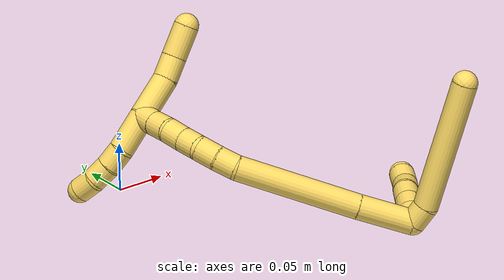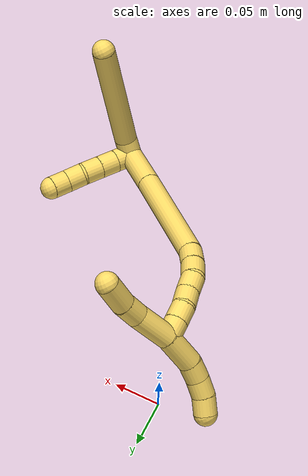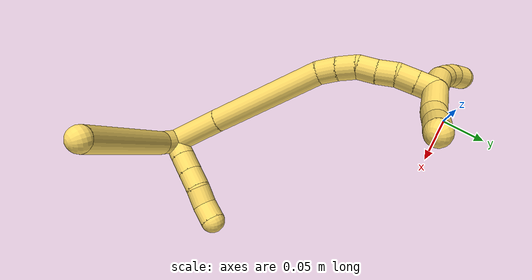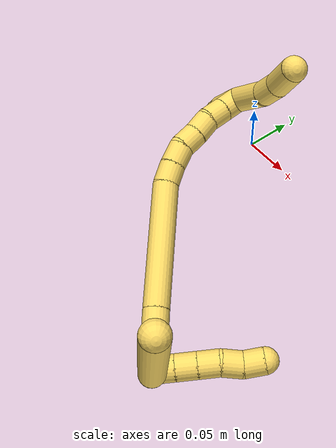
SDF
<sdf version="1.7">
 <world name="default">
  <model name="5">
   <static>0</static>
   <link name="5">
    <collision name="collision-cylinder-e_1_2_8">
     <pose>-0.002636 -0.000316 0.009964 0.031693 -0.258468 -0.004119</pose>
     <geometry><cylinder><radius>0.0125</radius><length>0.020624</length></cylinder></geometry>
     <surface>
      <friction><ode><mu>1.16</mu><mu2>1.16</mu2><slip1>0</slip1><slip2>0</slip2></ode></friction>
      <contact><ode><kp>1e+06</kp><kd>1</kd><max_vel>0</max_vel><min_depth>0.001</min_depth></ode></contact>
     </surface>
    </collision>
    <visual name="visual-cylinder-e_1_2_8">
     <pose>-0.002636 -0.000316 0.009964 0.031693 -0.258468 -0.004119</pose>
     <geometry><cylinder><radius>0.0125</radius><length>0.020624</length></cylinder></geometry>
     <material><ambient>1 0.858824 0.4 1</ambient></material>
    </visual>
    <collision name="collision-cylinder-e_2_8_6">
     <pose>-0.040041 0.006896 0.073956 -0.13844 -0.567466 0.040428</pose>
     <geometry><cylinder><radius>0.0125</radius><length>0.129376</length></cylinder></geometry>
     <surface>
      <friction><ode><mu>1.16</mu><mu2>1.16</mu2><slip1>0</slip1><slip2>0</slip2></ode></friction>
      <contact><ode><kp>1e+06</kp><kd>1</kd><max_vel>0</max_vel><min_depth>0.001</min_depth></ode></contact>
     </surface>
    </collision>
    <visual name="visual-cylinder-e_2_8_6">
     <pose>-0.040041 0.006896 0.073956 -0.13844 -0.567466 0.040428</pose>
     <geometry><cylinder><radius>0.0125</radius><length>0.129376</length></cylinder></geometry>
     <material><ambient>1 0.858824 0.4 1</ambient></material>
    </visual>
    <collision name="collision-cylinder-e_1_2_9">
     <pose>0.00174 0.00975 0.00138 -1.43018 0.174929 -0.152007</pose>
     <geometry><cylinder><radius>0.0125</radius><length>0.02</length></cylinder></geometry>
     <surface>
      <friction><ode><mu>1.16</mu><mu2>1.16</mu2><slip1>0</slip1><slip2>0</slip2></ode></friction>
      <contact><ode><kp>1e+06</kp><kd>1</kd><max_vel>0</max_vel><min_depth>0.001</min_depth></ode></contact>
     </surface>
    </collision>
    <visual name="visual-cylinder-e_1_2_9">
     <pose>0.00174 0.00975 0.00138 -1.43018 0.174929 -0.152007</pose>
     <geometry><cylinder><radius>0.0125</radius><length>0.02</length></cylinder></geometry>
     <material><ambient>1 0.858824 0.4 1</ambient></material>
    </visual>
    <collision name="collision-cylinder-e_2_9_10">
     <pose>0.005169 0.02926 0.004142 -1.43016 0.169651 -0.147411</pose>
     <geometry><cylinder><radius>0.0125</radius><length>0.02</length></cylinder></geometry>
     <surface>
      <friction><ode><mu>1.16</mu><mu2>1.16</mu2><slip1>0</slip1><slip2>0</slip2></ode></friction>
      <contact><ode><kp>1e+06</kp><kd>1</kd><max_vel>0</max_vel><min_depth>0.001</min_depth></ode></contact>
     </surface>
    </collision>
    <visual name="visual-cylinder-e_2_9_10">
     <pose>0.005169 0.02926 0.004142 -1.43016 0.169651 -0.147411</pose>
     <geometry><cylinder><radius>0.0125</radius><length>0.02</length></cylinder></geometry>
     <material><ambient>1 0.858824 0.4 1</ambient></material>
    </visual>
    <collision name="collision-cylinder-e_3_10_11">
     <pose>0.00852 0.048784 0.00689 -1.43173 0.167031 -0.145363</pose>
     <geometry><cylinder><radius>0.0125</radius><length>0.02</length></cylinder></geometry>
     <surface>
      <friction><ode><mu>1.16</mu><mu2>1.16</mu2><slip1>0</slip1><slip2>0</slip2></ode></friction>
      <contact><ode><kp>1e+06</kp><kd>1</kd><max_vel>0</max_vel><min_depth>0.001</min_depth></ode></contact>
     </surface>
    </collision>
    <visual name="visual-cylinder-e_3_10_11">
     <pose>0.00852 0.048784 0.00689 -1.43173 0.167031 -0.145363</pose>
     <geometry><cylinder><radius>0.0125</radius><length>0.02</length></cylinder></geometry>
     <material><ambient>1 0.858824 0.4 1</ambient></material>
    </visual>
    <collision name="collision-cylinder-e_4_11_12">
     <pose>0.014211 0.067683 0.008864 -1.50451 0.414596 -0.388672</pose>
     <geometry><cylinder><radius>0.0125</radius><length>0.02</length></cylinder></geometry>
     <surface>
      <friction><ode><mu>1.16</mu><mu2>1.16</mu2><slip1>0</slip1><slip2>0</slip2></ode></friction>
      <contact><ode><kp>1e+06</kp><kd>1</kd><max_vel>0</max_vel><min_depth>0.001</min_depth></ode></contact>
     </surface>
    </collision>
    <visual name="visual-cylinder-e_4_11_12">
     <pose>0.014211 0.067683 0.008864 -1.50451 0.414596 -0.388672</pose>
     <geometry><cylinder><radius>0.0125</radius><length>0.02</length></cylinder></geometry>
     <material><ambient>1 0.858824 0.4 1</ambient></material>
    </visual>
    <collision name="collision-cylinder-e_5_12_5">
     <pose>0.019174 0.086682 0.010804 -1.43636 0.093594 -0.081802</pose>
     <geometry><cylinder><radius>0.0125</radius><length>0.02</length></cylinder></geometry>
     <surface>
      <friction><ode><mu>1.16</mu><mu2>1.16</mu2><slip1>0</slip1><slip2>0</slip2></ode></friction>
      <contact><ode><kp>1e+06</kp><kd>1</kd><max_vel>0</max_vel><min_depth>0.001</min_depth></ode></contact>
     </surface>
    </collision>
    <visual name="visual-cylinder-e_5_12_5">
     <pose>0.019174 0.086682 0.010804 -1.43636 0.093594 -0.081802</pose>
     <geometry><cylinder><radius>0.0125</radius><length>0.02</length></cylinder></geometry>
     <material><ambient>1 0.858824 0.4 1</ambient></material>
    </visual>
    <collision name="collision-cylinder-e_1_2_13">
     <pose>-0.021402 0.009415 -0.014429 -2.56347 -0.89299 2.02988</pose>
     <geometry><cylinder><radius>0.0125</radius><length>0.05495</length></cylinder></geometry>
     <surface>
      <friction><ode><mu>1.16</mu><mu2>1.16</mu2><slip1>0</slip1><slip2>0</slip2></ode></friction>
      <contact><ode><kp>1e+06</kp><kd>1</kd><max_vel>0</max_vel><min_depth>0.001</min_depth></ode></contact>
     </surface>
    </collision>
    <visual name="visual-cylinder-e_1_2_13">
     <pose>-0.021402 0.009415 -0.014429 -2.56347 -0.89299 2.02988</pose>
     <geometry><cylinder><radius>0.0125</radius><length>0.05495</length></cylinder></geometry>
     <material><ambient>1 0.858824 0.4 1</ambient></material>
    </visual>
    <collision name="collision-cylinder-e_2_13_14">
     <pose>-0.091045 0.041249 -0.05968 -2.51272 -0.902157 1.95901</pose>
     <geometry><cylinder><radius>0.0125</radius><length>0.122962</length></cylinder></geometry>
     <surface>
      <friction><ode><mu>1.16</mu><mu2>1.16</mu2><slip1>0</slip1><slip2>0</slip2></ode></friction>
      <contact><ode><kp>1e+06</kp><kd>1</kd><max_vel>0</max_vel><min_depth>0.001</min_depth></ode></contact>
     </surface>
    </collision>
    <visual name="visual-cylinder-e_2_13_14">
     <pose>-0.091045 0.041249 -0.05968 -2.51272 -0.902157 1.95901</pose>
     <geometry><cylinder><radius>0.0125</radius><length>0.122962</length></cylinder></geometry>
     <material><ambient>1 0.858824 0.4 1</ambient></material>
    </visual>
    <collision name="collision-cylinder-e_3_14_15">
     <pose>-0.146635 0.069821 -0.094633 -2.1622 -0.781162 1.31548</pose>
     <geometry><cylinder><radius>0.0125</radius><length>0.020871</length></cylinder></geometry>
     <surface>
      <friction><ode><mu>1.16</mu><mu2>1.16</mu2><slip1>0</slip1><slip2>0</slip2></ode></friction>
      <contact><ode><kp>1e+06</kp><kd>1</kd><max_vel>0</max_vel><min_depth>0.001</min_depth></ode></contact>
     </surface>
    </collision>
    <visual name="visual-cylinder-e_3_14_15">
     <pose>-0.146635 0.069821 -0.094633 -2.1622 -0.781162 1.31548</pose>
     <geometry><cylinder><radius>0.0125</radius><length>0.020871</length></cylinder></geometry>
     <material><ambient>1 0.858824 0.4 1</ambient></material>
    </visual>
    <collision name="collision-cylinder-e_4_15_16">
     <pose>-0.160699 0.083091 -0.102633 -2.06852 -0.692155 1.09009</pose>
     <geometry><cylinder><radius>0.0125</radius><length>0.021047</length></cylinder></geometry>
     <surface>
      <friction><ode><mu>1.16</mu><mu2>1.16</mu2><slip1>0</slip1><slip2>0</slip2></ode></friction>
      <contact><ode><kp>1e+06</kp><kd>1</kd><max_vel>0</max_vel><min_depth>0.001</min_depth></ode></contact>
     </surface>
    </collision>
    <visual name="visual-cylinder-e_4_15_16">
     <pose>-0.160699 0.083091 -0.102633 -2.06852 -0.692155 1.09009</pose>
     <geometry><cylinder><radius>0.0125</radius><length>0.021047</length></cylinder></geometry>
     <material><ambient>1 0.858824 0.4 1</ambient></material>
    </visual>
    <collision name="collision-cylinder-e_5_16_17">
     <pose>-0.170915 0.09885 -0.110182 -1.97362 -0.356765 0.532669</pose>
     <geometry><cylinder><radius>0.0125</radius><length>0.020046</length></cylinder></geometry>
     <surface>
      <friction><ode><mu>1.16</mu><mu2>1.16</mu2><slip1>0</slip1><slip2>0</slip2></ode></friction>
      <contact><ode><kp>1e+06</kp><kd>1</kd><max_vel>0</max_vel><min_depth>0.001</min_depth></ode></contact>
     </surface>
    </collision>
    <visual name="visual-cylinder-e_5_16_17">
     <pose>-0.170915 0.09885 -0.110182 -1.97362 -0.356765 0.532669</pose>
     <geometry><cylinder><radius>0.0125</radius><length>0.020046</length></cylinder></geometry>
     <material><ambient>1 0.858824 0.4 1</ambient></material>
    </visual>
    <collision name="collision-cylinder-e_6_17_18">
     <pose>-0.179051 0.115686 -0.117291 -1.96679 -0.480897 0.70571</pose>
     <geometry><cylinder><radius>0.0125</radius><length>0.02004</length></cylinder></geometry>
     <surface>
      <friction><ode><mu>1.16</mu><mu2>1.16</mu2><slip1>0</slip1><slip2>0</slip2></ode></friction>
      <contact><ode><kp>1e+06</kp><kd>1</kd><max_vel>0</max_vel><min_depth>0.001</min_depth></ode></contact>
     </surface>
    </collision>
    <visual name="visual-cylinder-e_6_17_18">
     <pose>-0.179051 0.115686 -0.117291 -1.96679 -0.480897 0.70571</pose>
     <geometry><cylinder><radius>0.0125</radius><length>0.02004</length></cylinder></geometry>
     <material><ambient>1 0.858824 0.4 1</ambient></material>
    </visual>
    <collision name="collision-cylinder-e_7_18_19">
     <pose>-0.185872 0.132933 -0.124471 -1.96397 -0.219487 0.327035</pose>
     <geometry><cylinder><radius>0.0125</radius><length>0.020078</length></cylinder></geometry>
     <surface>
      <friction><ode><mu>1.16</mu><mu2>1.16</mu2><slip1>0</slip1><slip2>0</slip2></ode></friction>
      <contact><ode><kp>1e+06</kp><kd>1</kd><max_vel>0</max_vel><min_depth>0.001</min_depth></ode></contact>
     </surface>
    </collision>
    <visual name="visual-cylinder-e_7_18_19">
     <pose>-0.185872 0.132933 -0.124471 -1.96397 -0.219487 0.327035</pose>
     <geometry><cylinder><radius>0.0125</radius><length>0.020078</length></cylinder></geometry>
     <material><ambient>1 0.858824 0.4 1</ambient></material>
    </visual>
    <collision name="collision-cylinder-e_8_19_1">
     <pose>-0.190394 0.151103 -0.131607 -1.92594 -0.235812 0.337307</pose>
     <geometry><cylinder><radius>0.0125</radius><length>0.020006</length></cylinder></geometry>
     <surface>
      <friction><ode><mu>1.16</mu><mu2>1.16</mu2><slip1>0</slip1><slip2>0</slip2></ode></friction>
      <contact><ode><kp>1e+06</kp><kd>1</kd><max_vel>0</max_vel><min_depth>0.001</min_depth></ode></contact>
     </surface>
    </collision>
    <visual name="visual-cylinder-e_8_19_1">
     <pose>-0.190394 0.151103 -0.131607 -1.92594 -0.235812 0.337307</pose>
     <geometry><cylinder><radius>0.0125</radius><length>0.020006</length></cylinder></geometry>
     <material><ambient>1 0.858824 0.4 1</ambient></material>
    </visual>
    <collision name="collision-cylinder-e_1_1_20">
     <pose>-0.189917 0.154066 -0.153386 2.81868 0.144092 0.834218</pose>
     <geometry><cylinder><radius>0.0125</radius><length>0.039205</length></cylinder></geometry>
     <surface>
      <friction><ode><mu>1.16</mu><mu2>1.16</mu2><slip1>0</slip1><slip2>0</slip2></ode></friction>
      <contact><ode><kp>1e+06</kp><kd>1</kd><max_vel>0</max_vel><min_depth>0.001</min_depth></ode></contact>
     </surface>
    </collision>
    <visual name="visual-cylinder-e_1_1_20">
     <pose>-0.189917 0.154066 -0.153386 2.81868 0.144092 0.834218</pose>
     <geometry><cylinder><radius>0.0125</radius><length>0.039205</length></cylinder></geometry>
     <material><ambient>1 0.858824 0.4 1</ambient></material>
    </visual>
    <collision name="collision-cylinder-e_2_20_21">
     <pose>-0.185336 0.147255 -0.181911 3.07705 0.172221 2.4259</pose>
     <geometry><cylinder><radius>0.0125</radius><length>0.020602</length></cylinder></geometry>
     <surface>
      <friction><ode><mu>1.16</mu><mu2>1.16</mu2><slip1>0</slip1><slip2>0</slip2></ode></friction>
      <contact><ode><kp>1e+06</kp><kd>1</kd><max_vel>0</max_vel><min_depth>0.001</min_depth></ode></contact>
     </surface>
    </collision>
    <visual name="visual-cylinder-e_2_20_21">
     <pose>-0.185336 0.147255 -0.181911 3.07705 0.172221 2.4259</pose>
     <geometry><cylinder><radius>0.0125</radius><length>0.020602</length></cylinder></geometry>
     <material><ambient>1 0.858824 0.4 1</ambient></material>
    </visual>
    <collision name="collision-cylinder-e_3_21_22">
     <pose>-0.182469 0.1473 -0.202042 -3.07178 0.109449 -2.00658</pose>
     <geometry><cylinder><radius>0.0125</radius><length>0.020177</length></cylinder></geometry>
     <surface>
      <friction><ode><mu>1.16</mu><mu2>1.16</mu2><slip1>0</slip1><slip2>0</slip2></ode></friction>
      <contact><ode><kp>1e+06</kp><kd>1</kd><max_vel>0</max_vel><min_depth>0.001</min_depth></ode></contact>
     </surface>
    </collision>
    <visual name="visual-cylinder-e_3_21_22">
     <pose>-0.182469 0.1473 -0.202042 -3.07178 0.109449 -2.00658</pose>
     <geometry><cylinder><radius>0.0125</radius><length>0.020177</length></cylinder></geometry>
     <material><ambient>1 0.858824 0.4 1</ambient></material>
    </visual>
    <collision name="collision-cylinder-e_4_22_4">
     <pose>-0.180159 0.151202 -0.22145 -2.81342 0.121003 -0.701438</pose>
     <geometry><cylinder><radius>0.0125</radius><length>0.020015</length></cylinder></geometry>
     <surface>
      <friction><ode><mu>1.16</mu><mu2>1.16</mu2><slip1>0</slip1><slip2>0</slip2></ode></friction>
      <contact><ode><kp>1e+06</kp><kd>1</kd><max_vel>0</max_vel><min_depth>0.001</min_depth></ode></contact>
     </surface>
    </collision>
    <visual name="visual-cylinder-e_4_22_4">
     <pose>-0.180159 0.151202 -0.22145 -2.81342 0.121003 -0.701438</pose>
     <geometry><cylinder><radius>0.0125</radius><length>0.020015</length></cylinder></geometry>
     <material><ambient>1 0.858824 0.4 1</ambient></material>
    </visual>
    <collision name="collision-cylinder-e_1_1_23">
     <pose>-0.193397 0.170251 -0.116086 -0.48779 -0.031092 0.007738</pose>
     <geometry><cylinder><radius>0.0125</radius><length>0.04282</length></cylinder></geometry>
     <surface>
      <friction><ode><mu>1.16</mu><mu2>1.16</mu2><slip1>0</slip1><slip2>0</slip2></ode></friction>
      <contact><ode><kp>1e+06</kp><kd>1</kd><max_vel>0</max_vel><min_depth>0.001</min_depth></ode></contact>
     </surface>
    </collision>
    <visual name="visual-cylinder-e_1_1_23">
     <pose>-0.193397 0.170251 -0.116086 -0.48779 -0.031092 0.007738</pose>
     <geometry><cylinder><radius>0.0125</radius><length>0.04282</length></cylinder></geometry>
     <material><ambient>1 0.858824 0.4 1</ambient></material>
    </visual>
    <collision name="collision-cylinder-e_2_23_24">
     <pose>-0.197004 0.185815 -0.086952 -0.4959 -0.247653 0.062997</pose>
     <geometry><cylinder><radius>0.0125</radius><length>0.023995</length></cylinder></geometry>
     <surface>
      <friction><ode><mu>1.16</mu><mu2>1.16</mu2><slip1>0</slip1><slip2>0</slip2></ode></friction>
      <contact><ode><kp>1e+06</kp><kd>1</kd><max_vel>0</max_vel><min_depth>0.001</min_depth></ode></contact>
     </surface>
    </collision>
    <visual name="visual-cylinder-e_2_23_24">
     <pose>-0.197004 0.185815 -0.086952 -0.4959 -0.247653 0.062997</pose>
     <geometry><cylinder><radius>0.0125</radius><length>0.023995</length></cylinder></geometry>
     <material><ambient>1 0.858824 0.4 1</ambient></material>
    </visual>
    <collision name="collision-cylinder-e_3_24_3">
     <pose>-0.205431 0.196772 -0.062031 -0.353614 -0.336982 0.060767</pose>
     <geometry><cylinder><radius>0.0125</radius><length>0.033185</length></cylinder></geometry>
     <surface>
      <friction><ode><mu>1.16</mu><mu2>1.16</mu2><slip1>0</slip1><slip2>0</slip2></ode></friction>
      <contact><ode><kp>1e+06</kp><kd>1</kd><max_vel>0</max_vel><min_depth>0.001</min_depth></ode></contact>
     </surface>
    </collision>
    <visual name="visual-cylinder-e_3_24_3">
     <pose>-0.205431 0.196772 -0.062031 -0.353614 -0.336982 0.060767</pose>
     <geometry><cylinder><radius>0.0125</radius><length>0.033185</length></cylinder></geometry>
     <material><ambient>1 0.858824 0.4 1</ambient></material>
    </visual>
    <collision name="collision-sphere-3">
     <pose>-0.210917 0.202195 -0.04734 0 -0 0</pose>
     <geometry><sphere><radius>0.0125</radius></sphere></geometry>
     <surface>
      <friction><ode><mu>1.16</mu><mu2>1.16</mu2><slip1>0</slip1><slip2>0</slip2></ode></friction>
      <contact><ode><kp>1e+06</kp><kd>1</kd><max_vel>0</max_vel><min_depth>0.001</min_depth></ode></contact>
     </surface>
    </collision>
    <visual name="visual-sphere-3">
     <pose>-0.210917 0.202195 -0.04734 0 -0 0</pose>
     <geometry><sphere><radius>0.0125</radius></sphere></geometry>
     <material><ambient>1 0.858824 0.4 1</ambient></material>
    </visual>
    <collision name="collision-sphere-24">
     <pose>-0.199944 0.19135 -0.076721 0 -0 0</pose>
     <geometry><sphere><radius>0.0125</radius></sphere></geometry>
     <surface>
      <friction><ode><mu>1.16</mu><mu2>1.16</mu2><slip1>0</slip1><slip2>0</slip2></ode></friction>
      <contact><ode><kp>1e+06</kp><kd>1</kd><max_vel>0</max_vel><min_depth>0.001</min_depth></ode></contact>
     </surface>
    </collision>
    <visual name="visual-sphere-24">
     <pose>-0.199944 0.19135 -0.076721 0 -0 0</pose>
     <geometry><sphere><radius>0.0125</radius></sphere></geometry>
     <material><ambient>1 0.858824 0.4 1</ambient></material>
    </visual>
    <collision name="collision-sphere-23">
     <pose>-0.194063 0.180281 -0.097182 0 -0 0</pose>
     <geometry><sphere><radius>0.0125</radius></sphere></geometry>
     <surface>
      <friction><ode><mu>1.16</mu><mu2>1.16</mu2><slip1>0</slip1><slip2>0</slip2></ode></friction>
      <contact><ode><kp>1e+06</kp><kd>1</kd><max_vel>0</max_vel><min_depth>0.001</min_depth></ode></contact>
     </surface>
    </collision>
    <visual name="visual-sphere-23">
     <pose>-0.194063 0.180281 -0.097182 0 -0 0</pose>
     <geometry><sphere><radius>0.0125</radius></sphere></geometry>
     <material><ambient>1 0.858824 0.4 1</ambient></material>
    </visual>
    <collision name="collision-sphere-4">
     <pose>-0.178951 0.154404 -0.230854 0 -0 0</pose>
     <geometry><sphere><radius>0.0125</radius></sphere></geometry>
     <surface>
      <friction><ode><mu>1.16</mu><mu2>1.16</mu2><slip1>0</slip1><slip2>0</slip2></ode></friction>
      <contact><ode><kp>1e+06</kp><kd>1</kd><max_vel>0</max_vel><min_depth>0.001</min_depth></ode></contact>
     </surface>
    </collision>
    <visual name="visual-sphere-4">
     <pose>-0.178951 0.154404 -0.230854 0 -0 0</pose>
     <geometry><sphere><radius>0.0125</radius></sphere></geometry>
     <material><ambient>1 0.858824 0.4 1</ambient></material>
    </visual>
    <collision name="collision-sphere-22">
     <pose>-0.181367 0.148 -0.212046 0 -0 0</pose>
     <geometry><sphere><radius>0.0125</radius></sphere></geometry>
     <surface>
      <friction><ode><mu>1.16</mu><mu2>1.16</mu2><slip1>0</slip1><slip2>0</slip2></ode></friction>
      <contact><ode><kp>1e+06</kp><kd>1</kd><max_vel>0</max_vel><min_depth>0.001</min_depth></ode></contact>
     </surface>
    </collision>
    <visual name="visual-sphere-22">
     <pose>-0.181367 0.148 -0.212046 0 -0 0</pose>
     <geometry><sphere><radius>0.0125</radius></sphere></geometry>
     <material><ambient>1 0.858824 0.4 1</ambient></material>
    </visual>
    <collision name="collision-sphere-21">
     <pose>-0.183571 0.146601 -0.192039 0 -0 0</pose>
     <geometry><sphere><radius>0.0125</radius></sphere></geometry>
     <surface>
      <friction><ode><mu>1.16</mu><mu2>1.16</mu2><slip1>0</slip1><slip2>0</slip2></ode></friction>
      <contact><ode><kp>1e+06</kp><kd>1</kd><max_vel>0</max_vel><min_depth>0.001</min_depth></ode></contact>
     </surface>
    </collision>
    <visual name="visual-sphere-21">
     <pose>-0.183571 0.146601 -0.192039 0 -0 0</pose>
     <geometry><sphere><radius>0.0125</radius></sphere></geometry>
     <material><ambient>1 0.858824 0.4 1</ambient></material>
    </visual>
    <collision name="collision-sphere-20">
     <pose>-0.187102 0.14791 -0.171783 0 -0 0</pose>
     <geometry><sphere><radius>0.0125</radius></sphere></geometry>
     <surface>
      <friction><ode><mu>1.16</mu><mu2>1.16</mu2><slip1>0</slip1><slip2>0</slip2></ode></friction>
      <contact><ode><kp>1e+06</kp><kd>1</kd><max_vel>0</max_vel><min_depth>0.001</min_depth></ode></contact>
     </surface>
    </collision>
    <visual name="visual-sphere-20">
     <pose>-0.187102 0.14791 -0.171783 0 -0 0</pose>
     <geometry><sphere><radius>0.0125</radius></sphere></geometry>
     <material><ambient>1 0.858824 0.4 1</ambient></material>
    </visual>
    <collision name="collision-sphere-11">
     <pose>0.010183 0.05855 0.008257 0 -0 0</pose>
     <geometry><sphere><radius>0.0125</radius></sphere></geometry>
     <surface>
      <friction><ode><mu>1.16</mu><mu2>1.16</mu2><slip1>0</slip1><slip2>0</slip2></ode></friction>
      <contact><ode><kp>1e+06</kp><kd>1</kd><max_vel>0</max_vel><min_depth>0.001</min_depth></ode></contact>
     </surface>
    </collision>
    <visual name="visual-sphere-11">
     <pose>0.010183 0.05855 0.008257 0 -0 0</pose>
     <geometry><sphere><radius>0.0125</radius></sphere></geometry>
     <material><ambient>1 0.858824 0.4 1</ambient></material>
    </visual>
    <collision name="collision-sphere-10">
     <pose>0.006858 0.039019 0.005524 0 -0 0</pose>
     <geometry><sphere><radius>0.0125</radius></sphere></geometry>
     <surface>
      <friction><ode><mu>1.16</mu><mu2>1.16</mu2><slip1>0</slip1><slip2>0</slip2></ode></friction>
      <contact><ode><kp>1e+06</kp><kd>1</kd><max_vel>0</max_vel><min_depth>0.001</min_depth></ode></contact>
     </surface>
    </collision>
    <visual name="visual-sphere-10">
     <pose>0.006858 0.039019 0.005524 0 -0 0</pose>
     <geometry><sphere><radius>0.0125</radius></sphere></geometry>
     <material><ambient>1 0.858824 0.4 1</ambient></material>
    </visual>
    <collision name="collision-sphere-6">
     <pose>-0.074811 0.014424 0.127983 0 -0 0</pose>
     <geometry><sphere><radius>0.0125</radius></sphere></geometry>
     <surface>
      <friction><ode><mu>1.16</mu><mu2>1.16</mu2><slip1>0</slip1><slip2>0</slip2></ode></friction>
      <contact><ode><kp>1e+06</kp><kd>1</kd><max_vel>0</max_vel><min_depth>0.001</min_depth></ode></contact>
     </surface>
    </collision>
    <visual name="visual-sphere-6">
     <pose>-0.074811 0.014424 0.127983 0 -0 0</pose>
     <geometry><sphere><radius>0.0125</radius></sphere></geometry>
     <material><ambient>1 0.858824 0.4 1</ambient></material>
    </visual>
    <collision name="collision-sphere-9">
     <pose>0.003481 0.0195 0.00276 0 -0 0</pose>
     <geometry><sphere><radius>0.0125</radius></sphere></geometry>
     <surface>
      <friction><ode><mu>1.16</mu><mu2>1.16</mu2><slip1>0</slip1><slip2>0</slip2></ode></friction>
      <contact><ode><kp>1e+06</kp><kd>1</kd><max_vel>0</max_vel><min_depth>0.001</min_depth></ode></contact>
     </surface>
    </collision>
    <visual name="visual-sphere-9">
     <pose>0.003481 0.0195 0.00276 0 -0 0</pose>
     <geometry><sphere><radius>0.0125</radius></sphere></geometry>
     <material><ambient>1 0.858824 0.4 1</ambient></material>
    </visual>
    <collision name="collision-sphere-2">
     <geometry><sphere><radius>0.0125</radius></sphere></geometry>
     <surface>
      <friction><ode><mu>1.16</mu><mu2>1.16</mu2><slip1>0</slip1><slip2>0</slip2></ode></friction>
      <contact><ode><kp>1e+06</kp><kd>1</kd><max_vel>0</max_vel><min_depth>0.001</min_depth></ode></contact>
     </surface>
    </collision>
    <visual name="visual-sphere-2">
     <geometry><sphere><radius>0.0125</radius></sphere></geometry>
     <material><ambient>1 0.858824 0.4 1</ambient></material>
    </visual>
    <collision name="collision-sphere-19">
     <pose>-0.188057 0.141984 -0.128225 0 -0 0</pose>
     <geometry><sphere><radius>0.0125</radius></sphere></geometry>
     <surface>
      <friction><ode><mu>1.16</mu><mu2>1.16</mu2><slip1>0</slip1><slip2>0</slip2></ode></friction>
      <contact><ode><kp>1e+06</kp><kd>1</kd><max_vel>0</max_vel><min_depth>0.001</min_depth></ode></contact>
     </surface>
    </collision>
    <visual name="visual-sphere-19">
     <pose>-0.188057 0.141984 -0.128225 0 -0 0</pose>
     <geometry><sphere><radius>0.0125</radius></sphere></geometry>
     <material><ambient>1 0.858824 0.4 1</ambient></material>
    </visual>
    <collision name="collision-sphere-8">
     <pose>-0.005271 -0.000632 0.019929 0 -0 0</pose>
     <geometry><sphere><radius>0.0125</radius></sphere></geometry>
     <surface>
      <friction><ode><mu>1.16</mu><mu2>1.16</mu2><slip1>0</slip1><slip2>0</slip2></ode></friction>
      <contact><ode><kp>1e+06</kp><kd>1</kd><max_vel>0</max_vel><min_depth>0.001</min_depth></ode></contact>
     </surface>
    </collision>
    <visual name="visual-sphere-8">
     <pose>-0.005271 -0.000632 0.019929 0 -0 0</pose>
     <geometry><sphere><radius>0.0125</radius></sphere></geometry>
     <material><ambient>1 0.858824 0.4 1</ambient></material>
    </visual>
    <collision name="collision-sphere-12">
     <pose>0.018239 0.076815 0.00947 0 -0 0</pose>
     <geometry><sphere><radius>0.0125</radius></sphere></geometry>
     <surface>
      <friction><ode><mu>1.16</mu><mu2>1.16</mu2><slip1>0</slip1><slip2>0</slip2></ode></friction>
      <contact><ode><kp>1e+06</kp><kd>1</kd><max_vel>0</max_vel><min_depth>0.001</min_depth></ode></contact>
     </surface>
    </collision>
    <visual name="visual-sphere-12">
     <pose>0.018239 0.076815 0.00947 0 -0 0</pose>
     <geometry><sphere><radius>0.0125</radius></sphere></geometry>
     <material><ambient>1 0.858824 0.4 1</ambient></material>
    </visual>
    <collision name="collision-sphere-5">
     <pose>0.020108 0.096548 0.012139 0 -0 0</pose>
     <geometry><sphere><radius>0.0125</radius></sphere></geometry>
     <surface>
      <friction><ode><mu>1.16</mu><mu2>1.16</mu2><slip1>0</slip1><slip2>0</slip2></ode></friction>
      <contact><ode><kp>1e+06</kp><kd>1</kd><max_vel>0</max_vel><min_depth>0.001</min_depth></ode></contact>
     </surface>
    </collision>
    <visual name="visual-sphere-5">
     <pose>0.020108 0.096548 0.012139 0 -0 0</pose>
     <geometry><sphere><radius>0.0125</radius></sphere></geometry>
     <material><ambient>1 0.858824 0.4 1</ambient></material>
    </visual>
    <collision name="collision-sphere-13">
     <pose>-0.042803 0.01883 -0.028858 0 -0 0</pose>
     <geometry><sphere><radius>0.0125</radius></sphere></geometry>
     <surface>
      <friction><ode><mu>1.16</mu><mu2>1.16</mu2><slip1>0</slip1><slip2>0</slip2></ode></friction>
      <contact><ode><kp>1e+06</kp><kd>1</kd><max_vel>0</max_vel><min_depth>0.001</min_depth></ode></contact>
     </surface>
    </collision>
    <visual name="visual-sphere-13">
     <pose>-0.042803 0.01883 -0.028858 0 -0 0</pose>
     <geometry><sphere><radius>0.0125</radius></sphere></geometry>
     <material><ambient>1 0.858824 0.4 1</ambient></material>
    </visual>
    <collision name="collision-sphere-14">
     <pose>-0.139287 0.063669 -0.090502 0 -0 0</pose>
     <geometry><sphere><radius>0.0125</radius></sphere></geometry>
     <surface>
      <friction><ode><mu>1.16</mu><mu2>1.16</mu2><slip1>0</slip1><slip2>0</slip2></ode></friction>
      <contact><ode><kp>1e+06</kp><kd>1</kd><max_vel>0</max_vel><min_depth>0.001</min_depth></ode></contact>
     </surface>
    </collision>
    <visual name="visual-sphere-14">
     <pose>-0.139287 0.063669 -0.090502 0 -0 0</pose>
     <geometry><sphere><radius>0.0125</radius></sphere></geometry>
     <material><ambient>1 0.858824 0.4 1</ambient></material>
    </visual>
    <collision name="collision-sphere-15">
     <pose>-0.153983 0.075972 -0.098765 0 -0 0</pose>
     <geometry><sphere><radius>0.0125</radius></sphere></geometry>
     <surface>
      <friction><ode><mu>1.16</mu><mu2>1.16</mu2><slip1>0</slip1><slip2>0</slip2></ode></friction>
      <contact><ode><kp>1e+06</kp><kd>1</kd><max_vel>0</max_vel><min_depth>0.001</min_depth></ode></contact>
     </surface>
    </collision>
    <visual name="visual-sphere-15">
     <pose>-0.153983 0.075972 -0.098765 0 -0 0</pose>
     <geometry><sphere><radius>0.0125</radius></sphere></geometry>
     <material><ambient>1 0.858824 0.4 1</ambient></material>
    </visual>
    <collision name="collision-sphere-16">
     <pose>-0.167415 0.09021 -0.106501 0 -0 0</pose>
     <geometry><sphere><radius>0.0125</radius></sphere></geometry>
     <surface>
      <friction><ode><mu>1.16</mu><mu2>1.16</mu2><slip1>0</slip1><slip2>0</slip2></ode></friction>
      <contact><ode><kp>1e+06</kp><kd>1</kd><max_vel>0</max_vel><min_depth>0.001</min_depth></ode></contact>
     </surface>
    </collision>
    <visual name="visual-sphere-16">
     <pose>-0.167415 0.09021 -0.106501 0 -0 0</pose>
     <geometry><sphere><radius>0.0125</radius></sphere></geometry>
     <material><ambient>1 0.858824 0.4 1</ambient></material>
    </visual>
    <collision name="collision-sphere-17">
     <pose>-0.174416 0.10749 -0.113864 0 -0 0</pose>
     <geometry><sphere><radius>0.0125</radius></sphere></geometry>
     <surface>
      <friction><ode><mu>1.16</mu><mu2>1.16</mu2><slip1>0</slip1><slip2>0</slip2></ode></friction>
      <contact><ode><kp>1e+06</kp><kd>1</kd><max_vel>0</max_vel><min_depth>0.001</min_depth></ode></contact>
     </surface>
    </collision>
    <visual name="visual-sphere-17">
     <pose>-0.174416 0.10749 -0.113864 0 -0 0</pose>
     <geometry><sphere><radius>0.0125</radius></sphere></geometry>
     <material><ambient>1 0.858824 0.4 1</ambient></material>
    </visual>
    <collision name="collision-sphere-18">
     <pose>-0.183686 0.123882 -0.120717 0 -0 0</pose>
     <geometry><sphere><radius>0.0125</radius></sphere></geometry>
     <surface>
      <friction><ode><mu>1.16</mu><mu2>1.16</mu2><slip1>0</slip1><slip2>0</slip2></ode></friction>
      <contact><ode><kp>1e+06</kp><kd>1</kd><max_vel>0</max_vel><min_depth>0.001</min_depth></ode></contact>
     </surface>
    </collision>
    <visual name="visual-sphere-18">
     <pose>-0.183686 0.123882 -0.120717 0 -0 0</pose>
     <geometry><sphere><radius>0.0125</radius></sphere></geometry>
     <material><ambient>1 0.858824 0.4 1</ambient></material>
    </visual>
    <collision name="collision-sphere-1">
     <pose>-0.192731 0.160222 -0.134989 0 -0 0</pose>
     <geometry><sphere><radius>0.0125</radius></sphere></geometry>
     <surface>
      <friction><ode><mu>1.16</mu><mu2>1.16</mu2><slip1>0</slip1><slip2>0</slip2></ode></friction>
      <contact><ode><kp>1e+06</kp><kd>1</kd><max_vel>0</max_vel><min_depth>0.001</min_depth></ode></contact>
     </surface>
    </collision>
    <visual name="visual-sphere-1">
     <pose>-0.192731 0.160222 -0.134989 0 -0 0</pose>
     <geometry><sphere><radius>0.0125</radius></sphere></geometry>
     <material><ambient>1 0.858824 0.4 1</ambient></material>
    </visual>
    <inertial>
     <pose>-0.10134 0.077156 -0.051905 0 -0 0</pose>
     <mass>0.75</mass>
     <inertia>
      <ixx>0.000241</ixx>
      <ixy>0</ixy>
      <ixz>0</ixz>
      <iyy>0.000464</iyy>
      <iyz>0</iyz>
      <izz>0.000137</izz>
     </inertia>
    </inertial>
   </link>
   <pose>0.163356 -0.256098 0.01234 0.197517 0.845558 -0.226753</pose>
  </model>
 </world>
</sdf>
